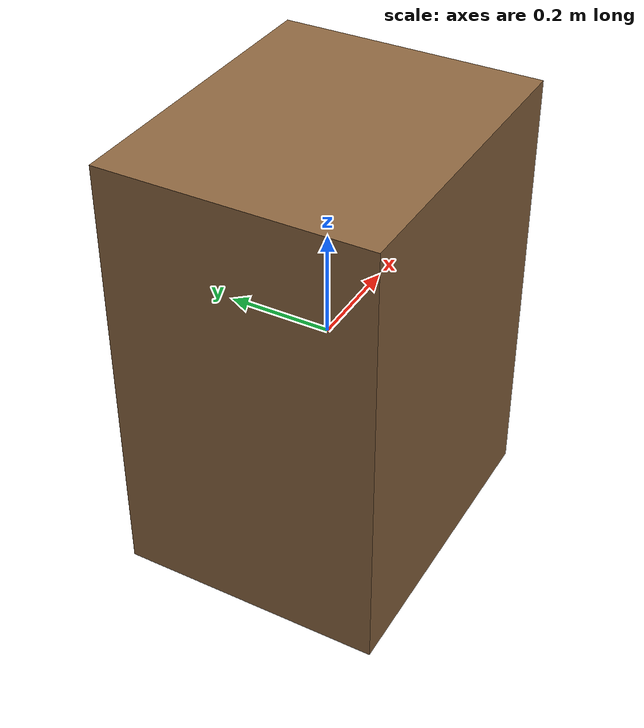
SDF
<?xml version="1.0"?>
<sdf version="1.9">
  <model name="table">
    <static>true</static>
    <link name="link">
      <collision name="collision">
        <geometry><box><size>0.6 0.5 0.842</size></box></geometry>
        <surface><friction><ode><mu>1.0</mu><mu2>1.0</mu2></ode></friction></surface>
      </collision>
      <visual name="visual">
        <geometry><box><size>0.6 0.5 0.842</size></box></geometry>
        <material><ambient>0.55 0.4 0.25 1</ambient><diffuse>0.55 0.4 0.25 1</diffuse></material>
      </visual>
    </link>
  </model>
</sdf>
